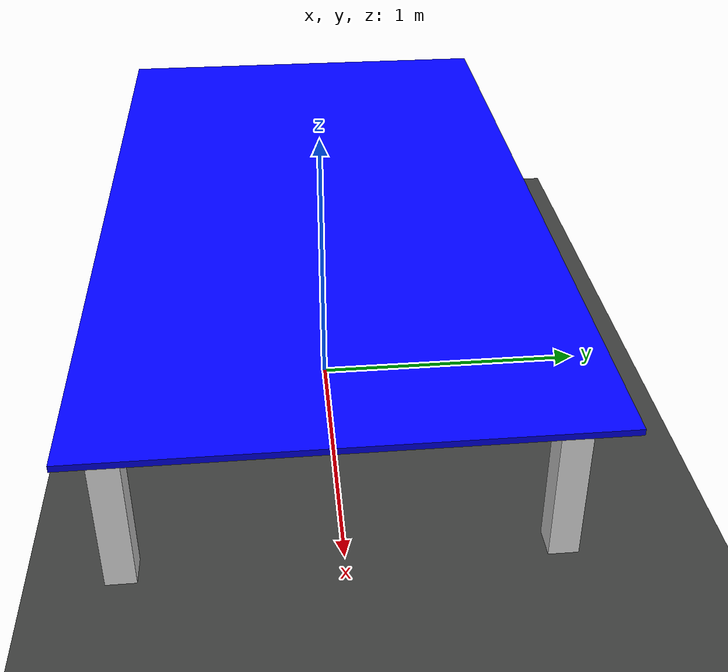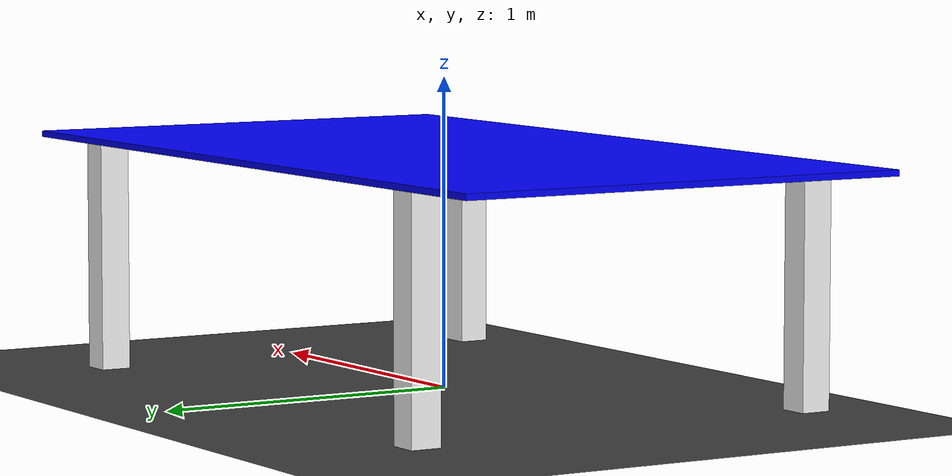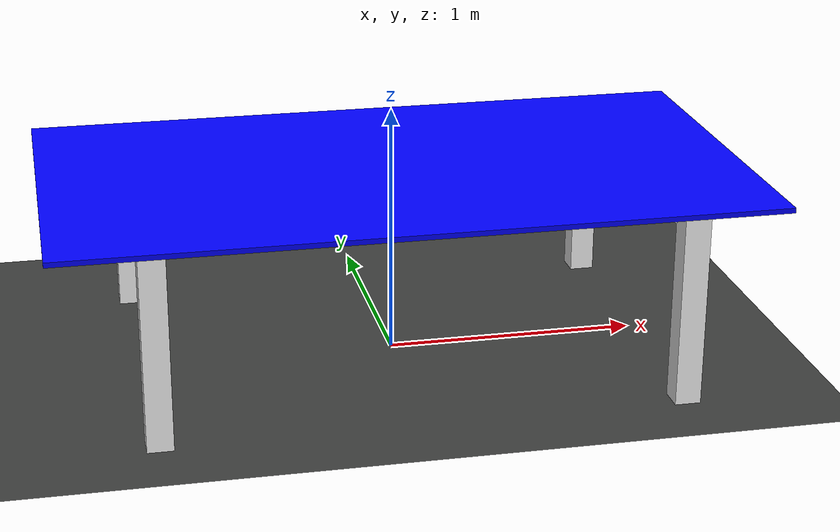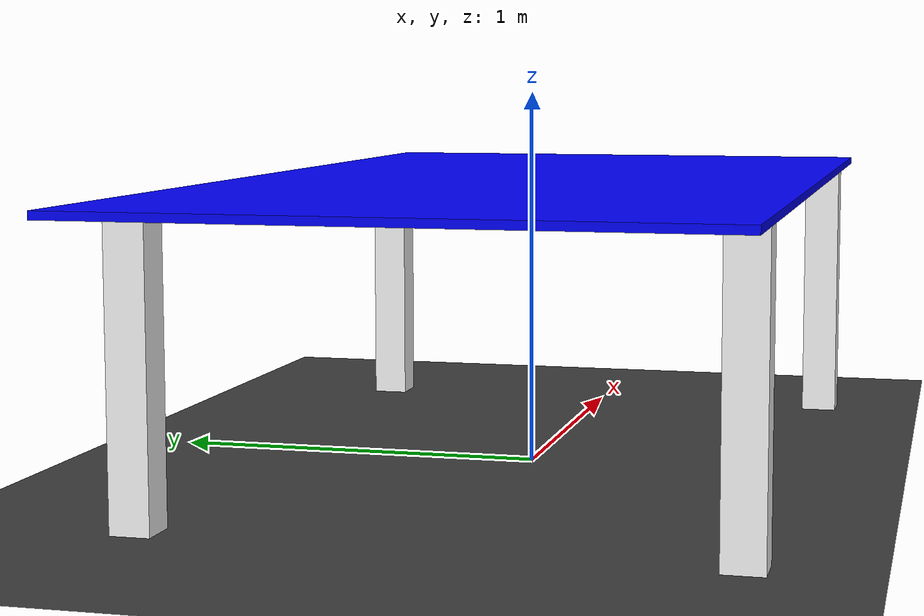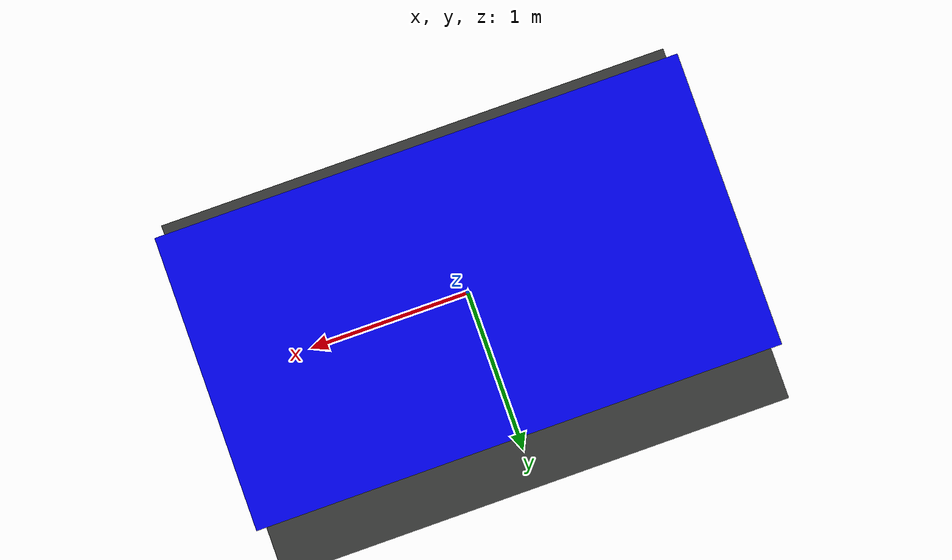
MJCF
<mujoco model="table">
    <compiler coordinate="local" angle="radian" meshdir="meshes/"/>
    <asset>
	    <texture name="groundplane" type="2d" builtin="checker" rgb1=".25 .26 .25" rgb2=".22 .22 .22" width="100" height="100" mark="edge" markrgb=".3 .3 .3"/>
	    <material name="MatGnd" texture="groundplane" texrepeat="5 5" specular="1" shininess=".3" reflectance="0.00001"/>
	</asset>
   <worldbody>
      <light directional="true" cutoff="60" exponent="1" diffuse="1 1 1" specular=".1 .1 .1" pos=".1 .2 1.3" dir="-.1 -.2 -1.3"/>
      <light diffuse=".5 .5 .5" pos="0 0 3" dir="0 0 -1"/>
      <geom name="ground" type="plane" pos="0 0 0" size="10 5 1" conaffinity="1" contype="1" material="MatGnd"/>
      <body name="table_tennis_table" pos="0 0 0">
         <geom name="table_top" type="box" size="1.37 .7625 .01" rgba="0 0 1 1" pos="0 0 0.76"/>
         <geom name="table_base_1" type="box" size="0.05 0.05 .375" rgba="1 1 1 1" pos="1 0.7 0.375"/>
         <geom name="table_base_2" type="box" size="0.05 0.05 .375" rgba="1 1 1 1" pos="1 -0.7 0.375"/>
         <geom name="table_base_3" type="box" size="0.05 0.05 .375" rgba="1 1 1 1" pos="-1 -0.7 0.375"/>
         <geom name="table_base_4" type="box" size="0.05 0.05 .375" rgba="1 1 1 1" pos="-1 0.7 0.375"/>
      </body>
   </worldbody>
</mujoco>
